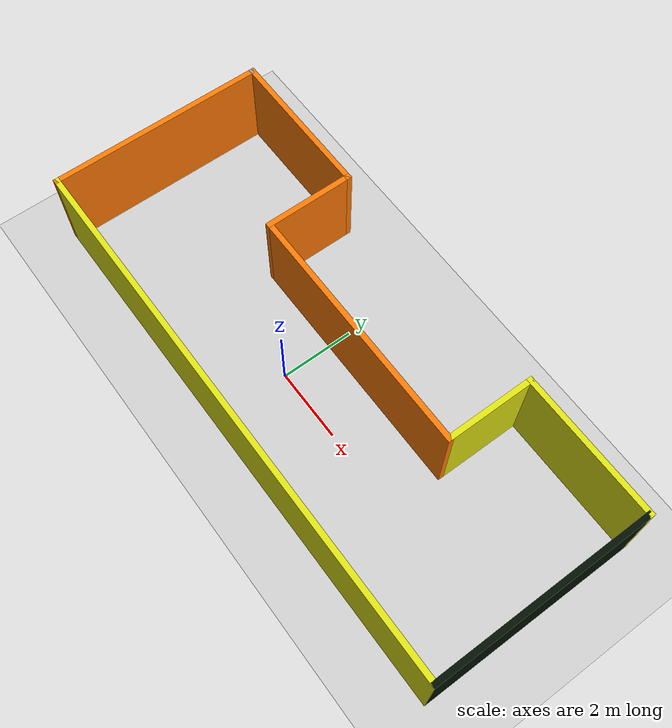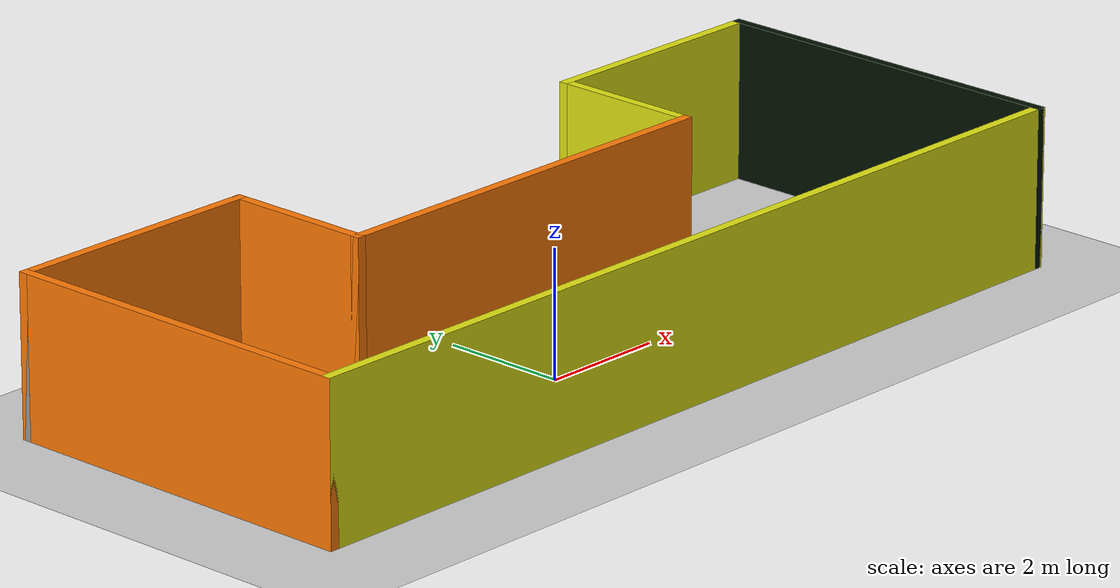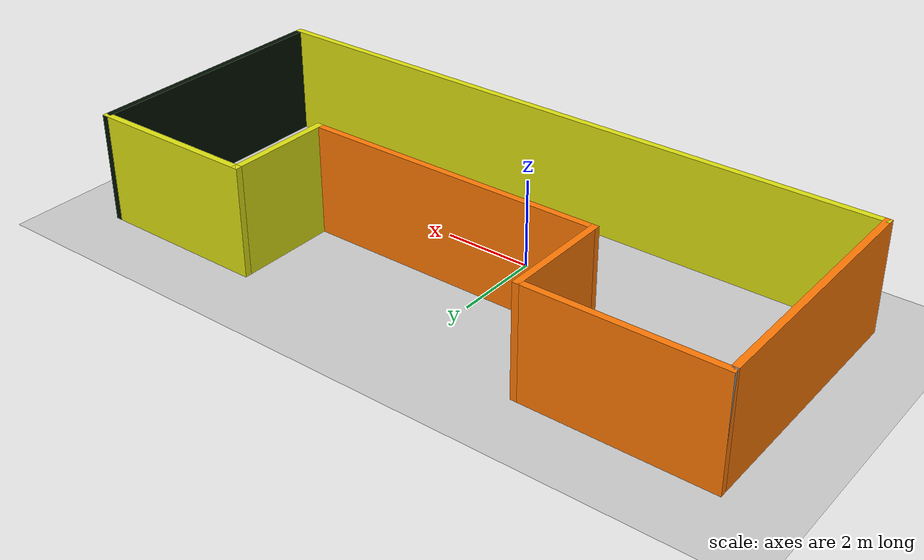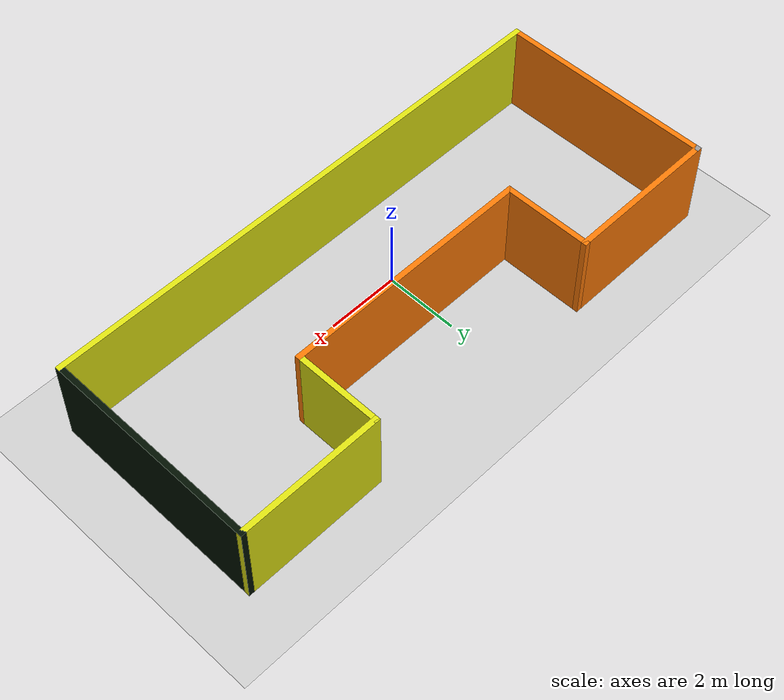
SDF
<sdf version="1.6">
 <world name="default">
  <light name="sun" type="directional">
   <pose>0 0 10 0 -0 0</pose>
   <diffuse>0.8 0.8 0.8 1</diffuse>
   <specular>0.1 0.1 0.1 1</specular>
   <attenuation>
    <range>1000</range>
    <constant>0.9</constant>
    <linear>0.01</linear>
    <quadratic>0.001</quadratic>
   </attenuation>
   <direction>-0.5 0.5 -1</direction>
  </light>
  <model name="ground_plane">
   <static>1</static>
   <link name="link">
    <collision name="collision">
     <geometry><plane><normal>0 0 1</normal><size>100 100</size></plane></geometry>
     <surface><friction><ode><mu>100</mu><mu2>50</mu2></ode></friction></surface>
    </collision>
    <visual name="visual">
     <cast_shadows>0</cast_shadows>
     <geometry><plane><normal>0 0 1</normal><size>100 100</size></plane></geometry>
     <material>
      <script><uri>file://media/materials/scripts/gazebo.material</uri><name>Gazebo/Grey</name></script>
     </material>
    </visual>
   </link>
  </model>
  <gravity>0 0 -9.8</gravity>
  <magnetic_field>6e-06 2.3e-05 -4.2e-05</magnetic_field>
  <atmosphere type="adiabatic"/>
  <physics name="default_physics" default="0" type="ode">
   <max_step_size>0.001</max_step_size>
   <real_time_factor>1</real_time_factor>
   <real_time_update_rate>1000</real_time_update_rate>
  </physics>
  <scene><ambient>0.4 0.4 0.4 1</ambient><background>0.7 0.7 0.7 1</background><shadows>1</shadows></scene>
  <spherical_coordinates>
   <surface_model>EARTH_WGS84</surface_model>
   <latitude_deg>0</latitude_deg>
   <longitude_deg>0</longitude_deg>
   <elevation>0</elevation>
   <heading_deg>0</heading_deg>
  </spherical_coordinates>
  <model name="office">
   <pose>0.769634 0.87125 0 0 -0 0</pose>
   <link name="Wall_10">
    <collision name="Wall_10_Collision">
     <geometry><box><size>0.15 0.15 2.5</size></box></geometry>
     <pose>0 0 1.25 0 -0 0</pose>
    </collision>
    <visual name="Wall_10_Visual">
     <pose>0 0 1.25 0 -0 0</pose>
     <geometry><box><size>0.15 0.15 2.5</size></box></geometry>
     <material>
      <script><uri>file://media/materials/scripts/gazebo.material</uri><name>Gazebo/Grey</name></script>
      <ambient>1 1 1 1</ambient>
     </material>
     <meta><layer>0</layer></meta>
    </visual>
    <pose>-7.425 2.925 0 0 -0 0</pose>
   </link>
   <link name="Wall_2">
    <collision name="Wall_2_Collision">
     <geometry><box><size>6 0.15 2.5</size></box></geometry>
     <pose>0 0 1.25 0 -0 0</pose>
    </collision>
    <visual name="Wall_2_Visual">
     <pose>0 0 1.25 0 -0 0</pose>
     <geometry><box><size>6 0.15 2.5</size></box></geometry>
     <material>
      <script><uri>file://media/materials/scripts/gazebo.material</uri><name>Gazebo/Grey</name></script>
      <ambient>0.996078 0.47451 0.0196078 1</ambient>
     </material>
     <meta><layer>0</layer></meta>
    </visual>
    <pose>-7.425 0 0 0 0 -1.5708</pose>
   </link>
   <link name="Wall_3">
    <collision name="Wall_3_Collision">
     <geometry><box><size>15 0.15 2.5</size></box></geometry>
     <pose>0 0 1.25 0 -0 0</pose>
    </collision>
    <visual name="Wall_3_Visual">
     <pose>0 0 1.25 0 -0 0</pose>
     <geometry><box><size>15 0.15 2.5</size></box></geometry>
     <material>
      <script><uri>file://media/materials/scripts/gazebo.material</uri><name>Gazebo/Grey</name></script>
      <ambient>0.870588 0.882353 0.0666667 1</ambient>
     </material>
     <meta><layer>0</layer></meta>
    </visual>
    <pose>0 -2.925 0 0 -0 0</pose>
   </link>
   <link name="Wall_4">
    <collision name="Wall_4_Collision">
     <geometry><box><size>6 0.15 2.5</size></box></geometry>
     <pose>0 0 1.25 0 -0 0</pose>
    </collision>
    <visual name="Wall_4_Visual">
     <pose>0 0 1.25 0 -0 0</pose>
     <geometry><box><size>6 0.15 2.5</size></box></geometry>
     <material>
      <script><uri>file://media/materials/scripts/gazebo.material</uri><name>Gazebo/Grey</name></script>
      <ambient>0 0.0588235 0 1</ambient>
     </material>
     <meta><layer>0</layer></meta>
    </visual>
    <pose>7.425 0 0 0 -0 1.5708</pose>
   </link>
   <link name="Wall_5">
    <collision name="Wall_5_Collision">
     <geometry><box><size>4 0.15 2.5</size></box></geometry>
     <pose>0 0 1.25 0 -0 0</pose>
    </collision>
    <visual name="Wall_5_Visual">
     <pose>0 0 1.25 0 -0 0</pose>
     <geometry><box><size>4 0.15 2.5</size></box></geometry>
     <material>
      <script><uri>file://media/materials/scripts/gazebo.material</uri><name>Gazebo/Grey</name></script>
      <ambient>0.870588 0.882353 0.0666667 1</ambient>
     </material>
     <meta><layer>0</layer></meta>
    </visual>
    <pose>5.5 2.925 0 0 -0 3.14159</pose>
   </link>
   <link name="Wall_6">
    <collision name="Wall_6_Collision">
     <geometry><box><size>2.5 0.15 2.5</size></box></geometry>
     <pose>0 0 1.25 0 -0 0</pose>
    </collision>
    <visual name="Wall_6_Visual">
     <pose>0 0 1.25 0 -0 0</pose>
     <geometry><box><size>2.5 0.15 2.5</size></box></geometry>
     <material>
      <script><uri>file://media/materials/scripts/gazebo.material</uri><name>Gazebo/Grey</name></script>
      <ambient>0.870588 0.882353 0.0666667 1</ambient>
     </material>
     <meta><layer>0</layer></meta>
    </visual>
    <pose>3.575 1.75 0 0 0 -1.5708</pose>
   </link>
   <link name="Wall_7">
    <collision name="Wall_7_Collision">
     <geometry><box><size>7 0.15 2.5</size></box></geometry>
     <pose>0 0 1.25 0 -0 0</pose>
    </collision>
    <visual name="Wall_7_Visual">
     <pose>0 0 1.25 0 -0 0</pose>
     <geometry><box><size>7 0.15 2.5</size></box></geometry>
     <material>
      <script><uri>file://media/materials/scripts/gazebo.material</uri><name>Gazebo/Grey</name></script>
      <ambient>0.996078 0.47451 0.0196078 1</ambient>
     </material>
     <meta><layer>0</layer></meta>
    </visual>
    <pose>0.15 0.575 0 0 -0 3.14159</pose>
   </link>
   <link name="Wall_8">
    <collision name="Wall_8_Collision">
     <geometry><box><size>2.5 0.15 2.5</size></box></geometry>
     <pose>0 0 1.25 0 -0 0</pose>
    </collision>
    <visual name="Wall_8_Visual">
     <pose>0 0 1.25 0 -0 0</pose>
     <geometry><box><size>2.5 0.15 2.5</size></box></geometry>
     <material>
      <script><uri>file://media/materials/scripts/gazebo.material</uri><name>Gazebo/Grey</name></script>
      <ambient>0.996078 0.47451 0.0196078 1</ambient>
     </material>
     <meta><layer>0</layer></meta>
    </visual>
    <pose>-3.275 1.75 0 0 -0 1.5708</pose>
   </link>
   <link name="Wall_9">
    <collision name="Wall_9_Collision">
     <geometry><box><size>4.3 0.15 2.5</size></box></geometry>
     <pose>0 0 1.25 0 -0 0</pose>
    </collision>
    <visual name="Wall_9_Visual">
     <pose>0 0 1.25 0 -0 0</pose>
     <geometry><box><size>4.3 0.15 2.5</size></box></geometry>
     <material>
      <script><uri>file://media/materials/scripts/gazebo.material</uri><name>Gazebo/Grey</name></script>
      <ambient>0.996078 0.47451 0.0196078 1</ambient>
     </material>
     <meta><layer>0</layer></meta>
    </visual>
    <pose>-5.35 2.925 0 0 -0 3.14159</pose>
   </link>
   <static>1</static>
  </model>
 </world>
</sdf>
